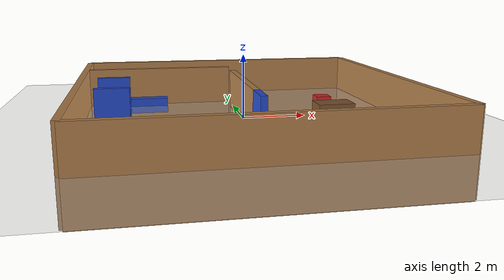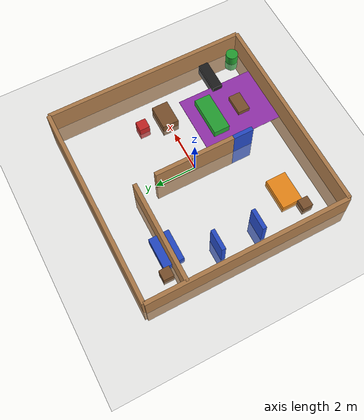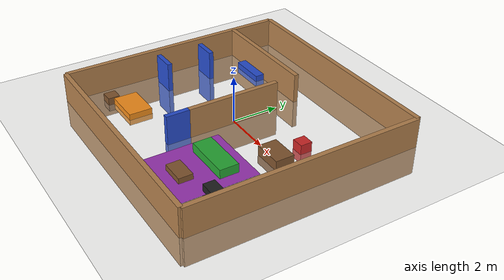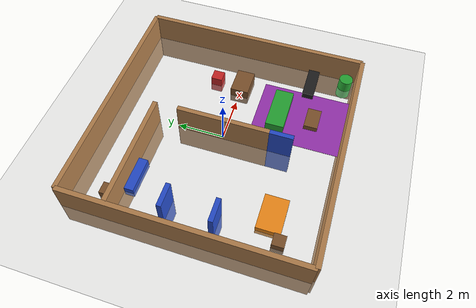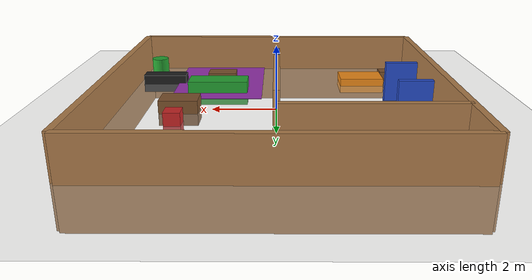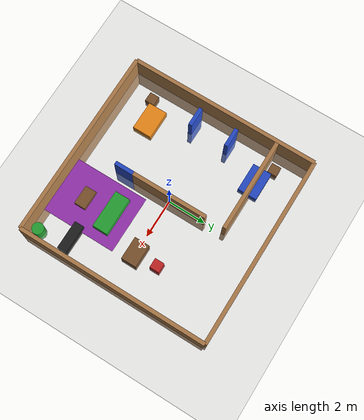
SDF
<?xml version="1.0"?>
<sdf version="1.7">
  <world name="house_world">
    <!-- Physics -->
    <physics type="ode">
      <max_step_size>0.001</max_step_size>
      <real_time_factor>1</real_time_factor>
      <real_time_update_rate>1000</real_time_update_rate>
    </physics>

    <!-- Scene -->
    <scene>
      <ambient>0.4 0.4 0.4 1</ambient>
      <background>0.7 0.7 0.7 1</background>
      <shadows>1</shadows>
    </scene>

    <!-- Lighting -->
    <light name="sun" type="directional">
      <cast_shadows>1</cast_shadows>
      <pose>0 0 10 0 0 0</pose>
      <diffuse>0.8 0.8 0.8 1</diffuse>
      <specular>0.2 0.2 0.2 1</specular>
      <attenuation>
        <range>1000</range>
        <constant>0.9</constant>
        <linear>0.01</linear>
        <quadratic>0.001</quadratic>
      </attenuation>
      <direction>-0.5 0.1 -0.9</direction>
    </light>

    <!-- Ground plane -->
    <model name="ground_plane">
      <static>1</static>
      <link name="link">
        <collision name="collision">
          <geometry>
            <plane>
              <normal>0 0 1</normal>
              <size>20 20</size>
            </plane>
          </geometry>
          <surface>
            <friction>
              <ode>
                <mu>100</mu>
                <mu2>50</mu2>
              </ode>
            </friction>
            <contact>
              <ode/>
            </contact>
            <bounce/>
          </surface>
        </collision>
        <visual name="visual">
          <cast_shadows>0</cast_shadows>
          <geometry>
            <plane>
              <normal>0 0 1</normal>
              <size>20 20</size>
            </plane>
          </geometry>
          <material>
            <script>
              <uri>file://media/materials/scripts/gazebo.material</uri>
              <name>Gazebo/Grey</name>
            </script>
          </material>
        </visual>
      </link>
    </model>

    <!-- House Layout -->
    <!-- Outer walls -->
    <model name="house_layout">
      <static>1</static>

      <!-- Outer perimeter walls -->
      <!-- Front wall (bottom) -->
      <link name="front_wall">
        <pose>0 -5 0 0 0 0</pose>
        <collision name="collision">
          <geometry>
            <box>
              <size>10 0.2 2.5</size>
            </box>
          </geometry>
        </collision>
        <visual name="visual">
          <geometry>
            <box>
              <size>10 0.2 2.5</size>
            </box>
          </geometry>
          <material>
            <script>
              <uri>file://media/materials/scripts/gazebo.material</uri>
              <name>Gazebo/Wood</name>
            </script>
          </material>
        </visual>
      </link>

      <!-- Back wall (top) -->
      <link name="back_wall">
        <pose>0 5 0 0 0 0</pose>
        <collision name="collision">
          <geometry>
            <box>
              <size>10 0.2 2.5</size>
            </box>
          </geometry>
        </collision>
        <visual name="visual">
          <geometry>
            <box>
              <size>10 0.2 2.5</size>
            </box>
          </geometry>
          <material>
            <script>
              <uri>file://media/materials/scripts/gazebo.material</uri>
              <name>Gazebo/Wood</name>
            </script>
          </material>
        </visual>
      </link>

      <!-- Left wall -->
      <link name="left_wall">
        <pose>-5 0 0 0 0 0</pose>
        <collision name="collision">
          <geometry>
            <box>
              <size>0.2 10 2.5</size>
            </box>
          </geometry>
        </collision>
        <visual name="visual">
          <geometry>
            <box>
              <size>0.2 10 2.5</size>
            </box>
          </geometry>
          <material>
            <script>
              <uri>file://media/materials/scripts/gazebo.material</uri>
              <name>Gazebo/Wood</name>
            </script>
          </material>
        </visual>
      </link>

      <!-- Right wall -->
      <link name="right_wall">
        <pose>5 0 0 0 0 0</pose>
        <collision name="collision">
          <geometry>
            <box>
              <size>0.2 10 2.5</size>
            </box>
          </geometry>
        </collision>
        <visual name="visual">
          <geometry>
            <box>
              <size>0.2 10 2.5</size>
            </box>
          </geometry>
          <material>
            <script>
              <uri>file://media/materials/scripts/gazebo.material</uri>
              <name>Gazebo/Wood</name>
            </script>
          </material>
        </visual>
      </link>

      <!-- Internal walls to create 2+1 layout -->
      <!-- Wall separating living room from bedrooms -->
      <link name="center_wall">
        <pose>0 0 0 0 0 0</pose>
        <collision name="collision">
          <geometry>
            <box>
              <size>0.2 4 2.5</size>
            </box>
          </geometry>
        </collision>
        <visual name="visual">
          <geometry>
            <box>
              <size>0.2 4 2.5</size>
            </box>
          </geometry>
          <material>
            <script>
              <uri>file://media/materials/scripts/gazebo.material</uri>
              <name>Gazebo/Wood</name>
            </script>
          </material>
        </visual>
      </link>

      <!-- Wall separating two bedrooms -->
      <link name="bedroom_wall">
        <pose>-2.5 3 0 0 0 0</pose>
        <collision name="collision">
          <geometry>
            <box>
              <size>5 0.2 2.5</size>
            </box>
          </geometry>
        </collision>
        <visual name="visual">
          <geometry>
            <box>
              <size>5 0.2 2.5</size>
            </box>
          </geometry>
          <material>
            <script>
              <uri>file://media/materials/scripts/gazebo.material</uri>
              <name>Gazebo/Wood</name>
            </script>
          </material>
        </visual>
      </link>

      <!-- Door in center wall -->
      <link name="door_center">
        <pose>0 -2.5 0 0 0 0</pose>
        <collision name="collision">
          <geometry>
            <box>
              <size>0.2 1 2.5</size>
            </box>
          </geometry>
        </collision>
        <visual name="visual">
          <geometry>
            <box>
              <size>0.2 1 2.5</size>
            </box>
          </geometry>
          <material>
            <script>
              <uri>file://media/materials/scripts/gazebo.material</uri>
              <name>Gazebo/Blue</name>
            </script>
          </material>
        </visual>
      </link>

      <!-- Door in bedroom wall -->
      <link name="door_bedroom1">
        <pose>-4 1 0 0 0 0</pose>
        <collision name="collision">
          <geometry>
            <box>
              <size>1 0.2 2.5</size>
            </box>
          </geometry>
        </collision>
        <visual name="visual">
          <geometry>
            <box>
              <size>1 0.2 2.5</size>
            </box>
          </geometry>
          <material>
            <script>
              <uri>file://media/materials/scripts/gazebo.material</uri>
              <name>Gazebo/Blue</name>
            </script>
          </material>
        </visual>
      </link>

      <!-- Door in bedroom wall -->
      <link name="door_bedroom2">
        <pose>-4 -1 0 0 0 0</pose>
        <collision name="collision">
          <geometry>
            <box>
              <size>1 0.2 2.5</size>
            </box>
          </geometry>
        </collision>
        <visual name="visual">
          <geometry>
            <box>
              <size>1 0.2 2.5</size>
            </box>
          </geometry>
          <material>
            <script>
              <uri>file://media/materials/scripts/gazebo.material</uri>
              <name>Gazebo/Blue</name>
            </script>
          </material>
        </visual>
      </link>

      <!-- Furniture - Table in living room -->
      <link name="table">
        <pose>3 0 0 0 0 0</pose>
        <collision name="collision">
          <geometry>
            <box>
              <size>1.2 0.8 0.8</size>
            </box>
          </geometry>
        </collision>
        <visual name="visual">
          <geometry>
            <box>
              <size>1.2 0.8 0.8</size>
            </box>
          </geometry>
          <material>
            <script>
              <uri>file://media/materials/scripts/gazebo.material</uri>
              <name>Gazebo/Brown</name>
            </script>
          </material>
        </visual>
      </link>

      <!-- Furniture - Chair in living room -->
      <link name="chair">
        <pose>3 1.2 0 0 0 0</pose>
        <collision name="collision">
          <geometry>
            <box>
              <size>0.5 0.5 0.8</size>
            </box>
          </geometry>
        </collision>
        <visual name="visual">
          <geometry>
            <box>
              <size>0.5 0.5 0.8</size>
            </box>
          </geometry>
          <material>
            <script>
              <uri>file://media/materials/scripts/gazebo.material</uri>
              <name>Gazebo/Red</name>
            </script>
          </material>
        </visual>
      </link>

      <!-- Sofa in living room -->
      <link name="sofa">
        <pose>2 -2 0 0 0 0</pose>
        <collision name="collision">
          <geometry>
            <box>
              <size>2 0.8 0.8</size>
            </box>
          </geometry>
        </collision>
        <visual name="visual">
          <geometry>
            <box>
              <size>2 0.8 0.8</size>
            </box>
          </geometry>
          <material>
            <script>
              <uri>file://media/materials/scripts/gazebo.material</uri>
              <name>Gazebo/Green</name>
            </script>
          </material>
        </visual>
      </link>

      <!-- Coffee table in living room -->
      <link name="coffee_table">
        <pose>2 -3.5 0 0 0 0</pose>
        <collision name="collision">
          <geometry>
            <box>
              <size>1 0.6 0.5</size>
            </box>
          </geometry>
        </collision>
        <visual name="visual">
          <geometry>
            <box>
              <size>1 0.6 0.5</size>
            </box>
          </geometry>
          <material>
            <script>
              <uri>file://media/materials/scripts/gazebo.material</uri>
              <name>Gazebo/Brown</name>
            </script>
          </material>
        </visual>
      </link>

      <!-- TV stand in living room -->
      <link name="tv_stand">
        <pose>4 -3 0 0 0 0</pose>
        <collision name="collision">
          <geometry>
            <box>
              <size>1.5 0.5 0.6</size>
            </box>
          </geometry>
        </collision>
        <visual name="visual">
          <geometry>
            <box>
              <size>1.5 0.5 0.6</size>
            </box>
          </geometry>
          <material>
            <script>
              <uri>file://media/materials/scripts/gazebo.material</uri>
              <name>Gazebo/Black</name>
            </script>
          </material>
        </visual>
      </link>

      <!-- Bed in bedroom 1 -->
      <link name="bed1">
        <pose>-3 3 0 0 0 0</pose>
        <collision name="collision">
          <geometry>
            <box>
              <size>1.5 1 0.5</size>
            </box>
          </geometry>
        </collision>
        <visual name="visual">
          <geometry>
            <box>
              <size>1.5 1 0.5</size>
            </box>
          </geometry>
          <material>
            <script>
              <uri>file://media/materials/scripts/gazebo.material</uri>
              <name>Gazebo/Blue</name>
            </script>
          </material>
        </visual>
      </link>

      <!-- Nightstand in bedroom 1 -->
      <link name="nightstand1">
        <pose>-4 3.5 0 0 0 0</pose>
        <collision name="collision">
          <geometry>
            <box>
              <size>0.5 0.5 0.6</size>
            </box>
          </geometry>
        </collision>
        <visual name="visual">
          <geometry>
            <box>
              <size>0.5 0.5 0.6</size>
            </box>
          </geometry>
          <material>
            <script>
              <uri>file://media/materials/scripts/gazebo.material</uri>
              <name>Gazebo/Brown</name>
            </script>
          </material>
        </visual>
      </link>

      <!-- Bed in bedroom 2 -->
      <link name="bed2">
        <pose>-3 -3 0 0 0 0</pose>
        <collision name="collision">
          <geometry>
            <box>
              <size>1.5 1 0.5</size>
            </box>
          </geometry>
        </collision>
        <visual name="visual">
          <geometry>
            <box>
              <size>1.5 1 0.5</size>
            </box>
          </geometry>
          <material>
            <script>
              <uri>file://media/materials/scripts/gazebo.material</uri>
              <name>Gazebo/Orange</name>
            </script>
          </material>
        </visual>
      </link>

      <!-- Nightstand in bedroom 2 -->
      <link name="nightstand2">
        <pose>-4 -3.5 0 0 0 0</pose>
        <collision name="collision">
          <geometry>
            <box>
              <size>0.5 0.5 0.6</size>
            </box>
          </geometry>
        </collision>
        <visual name="visual">
          <geometry>
            <box>
              <size>0.5 0.5 0.6</size>
            </box>
          </geometry>
          <material>
            <script>
              <uri>file://media/materials/scripts/gazebo.material</uri>
              <name>Gazebo/Brown</name>
            </script>
          </material>
        </visual>
      </link>

      <!-- Plant in living room corner -->
      <link name="plant">
        <pose>4.5 -4.5 0 0 0 0</pose>
        <collision name="collision">
          <geometry>
            <cylinder>
              <radius>0.3</radius>
              <length>1</length>
            </cylinder>
          </geometry>
        </collision>
        <visual name="visual">
          <geometry>
            <cylinder>
              <radius>0.3</radius>
              <length>1</length>
            </cylinder>
          </geometry>
          <material>
            <script>
              <uri>file://media/materials/scripts/gazebo.material</uri>
              <name>Gazebo/Green</name>
            </script>
          </material>
        </visual>
      </link>

      <!-- Rug in living room -->
      <link name="rug">
        <pose>2 -3 0.01 0 0 0</pose>
        <collision name="collision">
          <geometry>
            <box>
              <size>3 4 0.01</size>
            </box>
          </geometry>
        </collision>
        <visual name="visual">
          <geometry>
            <box>
              <size>3 4 0.01</size>
            </box>
          </geometry>
          <material>
            <script>
              <uri>file://media/materials/scripts/gazebo.material</uri>
              <name>Gazebo/Purple</name>
            </script>
          </material>
        </visual>
      </link>
    </model>

    <!-- Gravity -->
    <gravity>0 0 -9.8</gravity>

    <!-- GUI Camera -->
    <gui fullscreen='0'>
      <camera name='user_camera'>
        <pose>0 0 10 0 1.57 0</pose>
        <view_controller>orbit</view_controller>
      </camera>
    </gui>
  </world>
</sdf>
